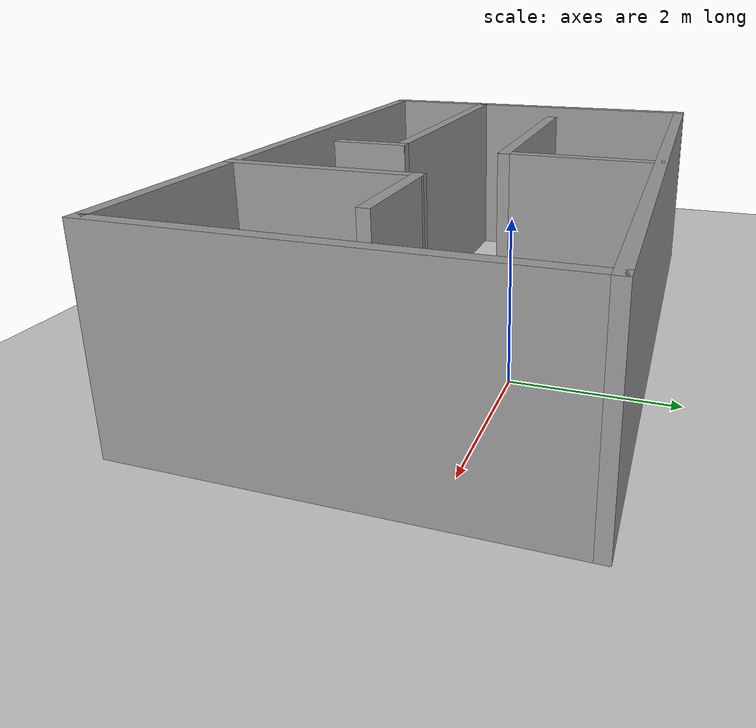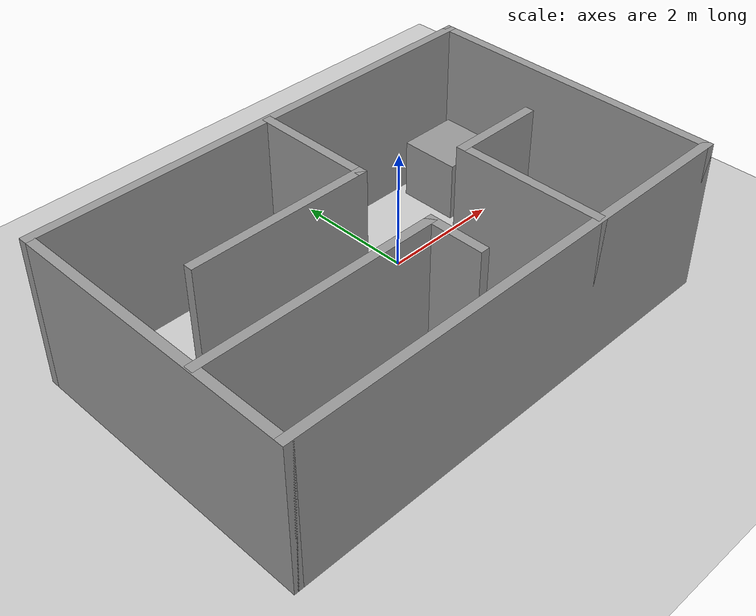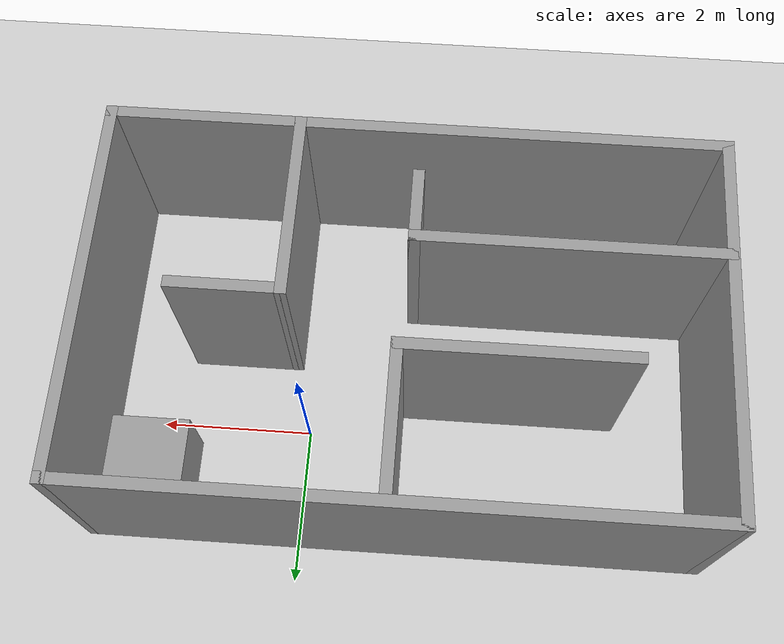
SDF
<sdf version="1.7">
 <world name="default">
  <light name="sun" type="directional">
   <pose>0 0 10 0 -0 0</pose>
   <diffuse>0.8 0.8 0.8 1</diffuse>
   <specular>0.2 0.2 0.2 1</specular>
   <attenuation>
    <range>1000</range>
    <constant>0.9</constant>
    <linear>0.01</linear>
    <quadratic>0.001</quadratic>
   </attenuation>
   <direction>-0.5 0.1 -0.9</direction>
   <spot><inner_angle>0</inner_angle><outer_angle>0</outer_angle><falloff>0</falloff></spot>
  </light>
  <model name="ground_plane">
   <static>1</static>
   <link name="link">
    <collision name="collision">
     <geometry><plane><normal>0 0 1</normal><size>100 100</size></plane></geometry>
     <surface><friction><ode><mu>100</mu><mu2>50</mu2></ode></friction></surface>
    </collision>
    <visual name="visual">
     <cast_shadows>0</cast_shadows>
     <geometry><plane><normal>0 0 1</normal><size>100 100</size></plane></geometry>
     <material>
      <script><uri>file://media/materials/scripts/gazebo.material</uri><name>Gazebo/Grey</name></script>
     </material>
    </visual>
   </link>
  </model>
  <gravity>0 0 -9.8</gravity>
  <magnetic_field>6e-06 2.3e-05 -4.2e-05</magnetic_field>
  <atmosphere type="adiabatic"/>
  <physics type="ode">
   <max_step_size>0.001</max_step_size>
   <real_time_factor>1</real_time_factor>
   <real_time_update_rate>1000</real_time_update_rate>
  </physics>
  <scene><ambient>0.4 0.4 0.4 1</ambient><background>0.7 0.7 0.7 1</background><shadows>1</shadows></scene>
  <audio><device>default</device></audio>
  <spherical_coordinates>
   <surface_model>EARTH_WGS84</surface_model>
   <latitude_deg>0</latitude_deg>
   <longitude_deg>0</longitude_deg>
   <elevation>0</elevation>
   <heading_deg>0</heading_deg>
  </spherical_coordinates>
  <model name="room">
   <pose>-1.23684 0.050068 0 0 -0 0</pose>
   <link name="Wall_0">
    <collision name="Wall_0_Collision">
     <geometry><box><size>8 0.15 2.5</size></box></geometry>
     <pose>0 0 1.25 0 -0 0</pose>
    </collision>
    <visual name="Wall_0_Visual">
     <pose>0 0 1.25 0 -0 0</pose>
     <geometry><box><size>8 0.15 2.5</size></box></geometry>
     <material>
      <script><uri>file://media/materials/scripts/gazebo.material</uri><name>Gazebo/Grey</name></script>
      <ambient>1 1 1 1</ambient>
     </material>
     <meta><layer>0</layer></meta>
    </visual>
    <pose>0 1.4425 0 0 -0 0</pose>
   </link>
   <link name="Wall_10">
    <collision name="Wall_10_Collision">
     <geometry><box><size>1 0.15 2.5</size></box></geometry>
     <pose>0 0 1.25 0 -0 0</pose>
    </collision>
    <visual name="Wall_10_Visual">
     <pose>0 0 1.25 0 -0 0</pose>
     <geometry><box><size>1 0.15 2.5</size></box></geometry>
     <material>
      <script><uri>file://media/materials/scripts/gazebo.material</uri><name>Gazebo/Grey</name></script>
      <ambient>1 1 1 1</ambient>
     </material>
     <meta><layer>0</layer></meta>
    </visual>
    <pose>-0.055 -2.3025 0 0 -0 -1.5708</pose>
   </link>
   <link name="Wall_13">
    <collision name="Wall_13_Collision">
     <geometry><box><size>2.5 0.15 2.5</size></box></geometry>
     <pose>0 0 1.25 0 -0 0</pose>
    </collision>
    <visual name="Wall_13_Visual">
     <pose>0 0 1.25 0 -0 0</pose>
     <geometry><box><size>2.5 0.15 2.5</size></box></geometry>
     <material>
      <script><uri>file://media/materials/scripts/gazebo.material</uri><name>Gazebo/Grey</name></script>
      <ambient>1 1 1 1</ambient>
     </material>
     <meta><layer>0</layer></meta>
    </visual>
    <pose>1.495 -2.2325 0 0 -0 1.5708</pose>
   </link>
   <link name="Wall_14">
    <collision name="Wall_14_Collision">
     <geometry><box><size>1.5 0.15 2.5</size></box></geometry>
     <pose>0 0 1.25 0 -0 0</pose>
    </collision>
    <visual name="Wall_14_Visual">
     <pose>0 0 1.25 0 -0 0</pose>
     <geometry><box><size>1.5 0.15 2.5</size></box></geometry>
     <material>
      <script><uri>file://media/materials/scripts/gazebo.material</uri><name>Gazebo/Grey</name></script>
      <ambient>1 1 1 1</ambient>
     </material>
     <meta><layer>0</layer></meta>
    </visual>
    <pose>2.17 -1.0575 0 0 -0 0</pose>
   </link>
   <link name="Wall_2">
    <collision name="Wall_2_Collision">
     <geometry><box><size>5 0.15 2.5</size></box></geometry>
     <pose>0 0 1.25 0 -0 0</pose>
    </collision>
    <visual name="Wall_2_Visual">
     <pose>0 0 1.25 0 -0 0</pose>
     <geometry><box><size>5 0.15 2.5</size></box></geometry>
     <material>
      <script><uri>file://media/materials/scripts/gazebo.material</uri><name>Gazebo/Grey</name></script>
      <ambient>1 1 1 1</ambient>
     </material>
     <meta><layer>0</layer></meta>
    </visual>
    <pose>-3.925 -0.9825 0 0 -0 -1.5708</pose>
   </link>
   <link name="Wall_3">
    <collision name="Wall_3_Collision">
     <geometry><box><size>8 0.15 2.5</size></box></geometry>
     <pose>0 0 1.25 0 -0 0</pose>
    </collision>
    <visual name="Wall_3_Visual">
     <pose>0 0 1.25 0 -0 0</pose>
     <geometry><box><size>8 0.15 2.5</size></box></geometry>
     <material>
      <script><uri>file://media/materials/scripts/gazebo.material</uri><name>Gazebo/Grey</name></script>
      <ambient>1 1 1 1</ambient>
     </material>
     <meta><layer>0</layer></meta>
    </visual>
    <pose>0 -3.4075 0 0 -0 0</pose>
   </link>
   <link name="Wall_4">
    <collision name="Wall_4_Collision">
     <geometry><box><size>5 0.15 2.5</size></box></geometry>
     <pose>0 0 1.25 0 -0 0</pose>
    </collision>
    <visual name="Wall_4_Visual">
     <pose>0 0 1.25 0 -0 0</pose>
     <geometry><box><size>5 0.15 2.5</size></box></geometry>
     <material>
      <script><uri>file://media/materials/scripts/gazebo.material</uri><name>Gazebo/Grey</name></script>
      <ambient>1 1 1 1</ambient>
     </material>
     <meta><layer>0</layer></meta>
    </visual>
    <pose>3.925 -0.9825 0 0 -0 1.5708</pose>
   </link>
   <link name="Wall_6">
    <collision name="Wall_6_Collision">
     <geometry><box><size>2 0.15 2.5</size></box></geometry>
     <pose>0 0 1.25 0 -0 0</pose>
    </collision>
    <visual name="Wall_6_Visual">
     <pose>0 0 1.25 0 -0 0</pose>
     <geometry><box><size>2 0.15 2.5</size></box></geometry>
     <material>
      <script><uri>file://media/materials/scripts/gazebo.material</uri><name>Gazebo/Grey</name></script>
      <ambient>1 1 1 1</ambient>
     </material>
     <meta><layer>0</layer></meta>
    </visual>
    <pose>0.055 0.4775 0 0 -0 -1.5708</pose>
   </link>
   <link name="Wall_7">
    <collision name="Wall_7_Collision">
     <geometry><box><size>3 0.15 2.5</size></box></geometry>
     <pose>0 0 1.25 0 -0 0</pose>
    </collision>
    <visual name="Wall_7_Visual">
     <pose>0 0 1.25 0 -0 0</pose>
     <geometry><box><size>3 0.15 2.5</size></box></geometry>
     <material>
      <script><uri>file://media/materials/scripts/gazebo.material</uri><name>Gazebo/Grey</name></script>
      <ambient>1 1 1 1</ambient>
     </material>
     <meta><layer>0</layer></meta>
    </visual>
    <pose>-1.37 -0.4475 0 0 -0 3.14159</pose>
   </link>
   <link name="Wall_9">
    <collision name="Wall_9_Collision">
     <geometry><box><size>4 0.15 2.5</size></box></geometry>
     <pose>0 0 1.25 0 -0 0</pose>
    </collision>
    <visual name="Wall_9_Visual">
     <pose>0 0 1.25 0 -0 0</pose>
     <geometry><box><size>4 0.15 2.5</size></box></geometry>
     <material>
      <script><uri>file://media/materials/scripts/gazebo.material</uri><name>Gazebo/Grey</name></script>
      <ambient>1 1 1 1</ambient>
     </material>
     <meta><layer>0</layer></meta>
    </visual>
    <pose>-1.98 -1.8775 0 0 -0 0</pose>
   </link>
   <static>1</static>
  </model>
  <model name="unit_box">
   <pose>1.94666 0.726215 0.5 0 -0 0</pose>
   <link name="link">
    <inertial>
     <mass>1</mass>
     <inertia>
      <ixx>0.166667</ixx>
      <ixy>0</ixy>
      <ixz>0</ixz>
      <iyy>0.166667</iyy>
      <iyz>0</iyz>
      <izz>0.166667</izz>
     </inertia>
    </inertial>
    <collision name="collision"><geometry><box><size>1 1 1</size></box></geometry></collision>
    <visual name="visual">
     <geometry><box><size>1 1 1</size></box></geometry>
     <material>
      <script><name>Gazebo/Grey</name><uri>file://media/materials/scripts/gazebo.material</uri></script>
     </material>
    </visual>
   </link>
  </model>
 </world>
</sdf>
